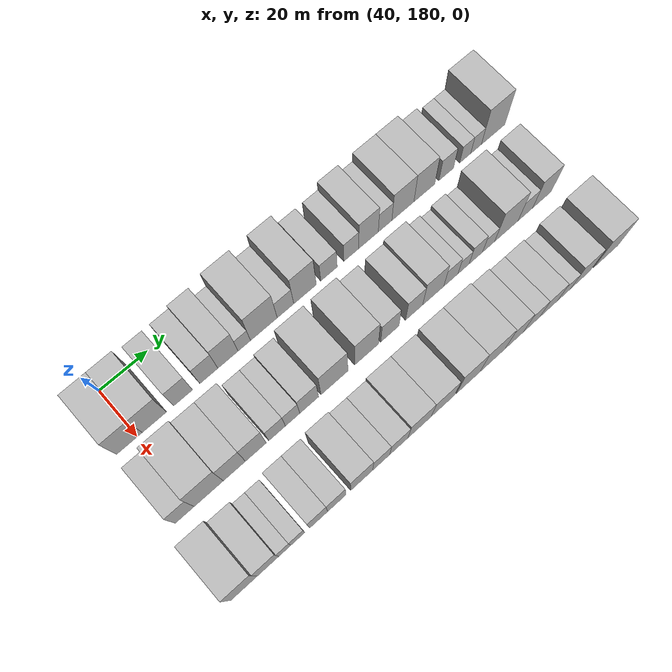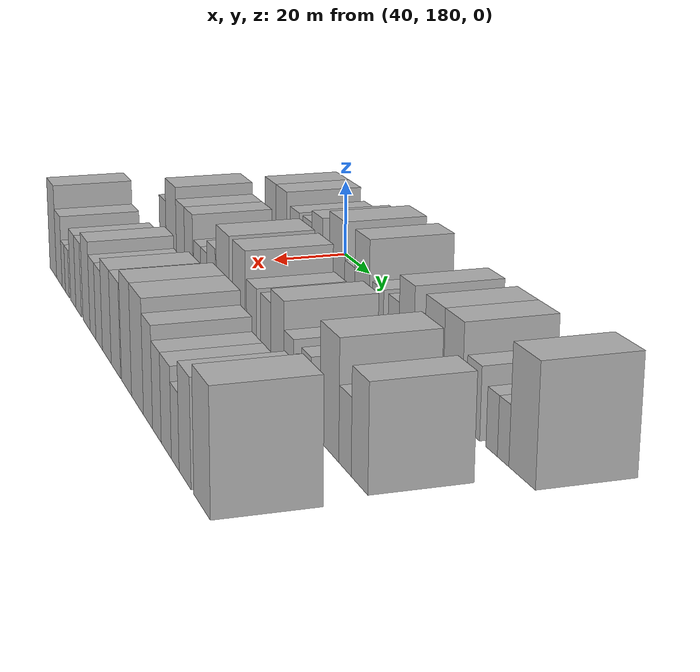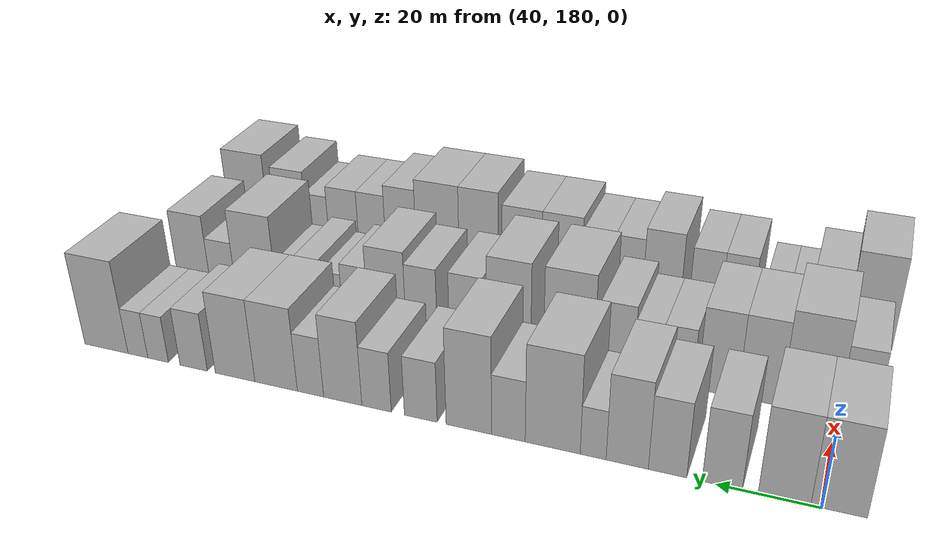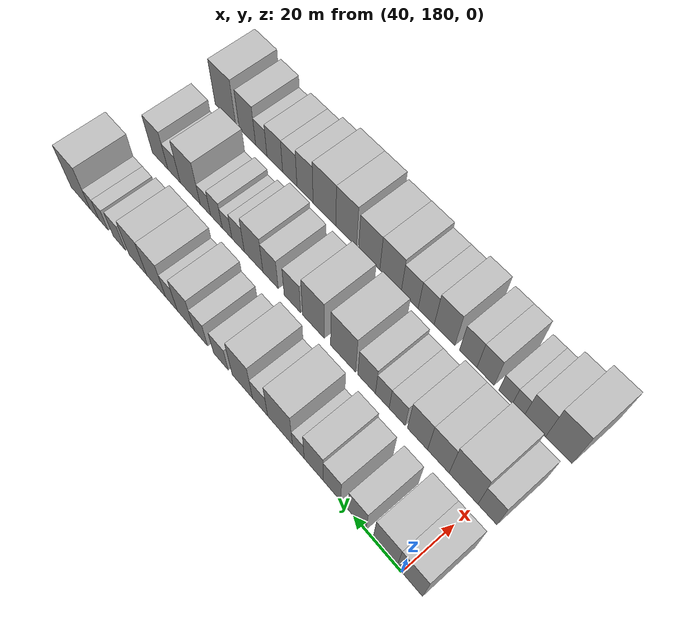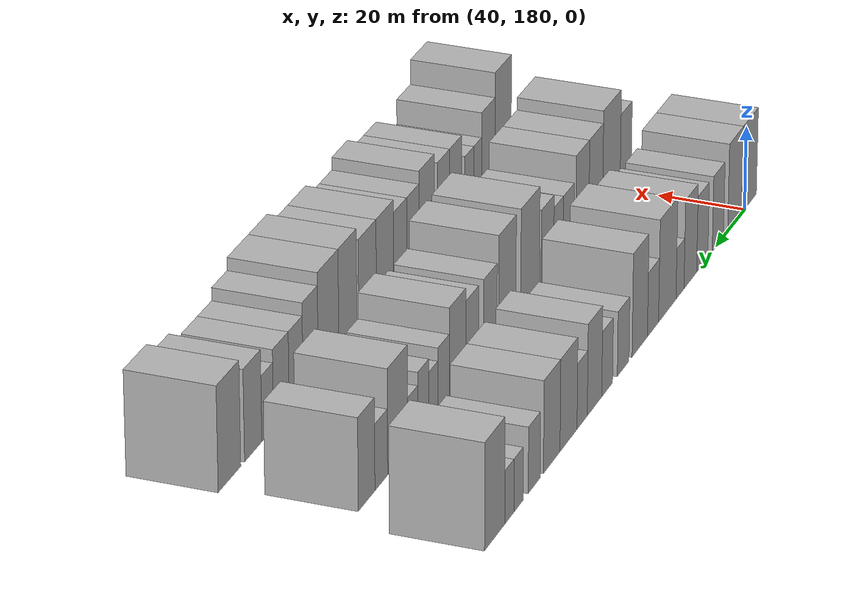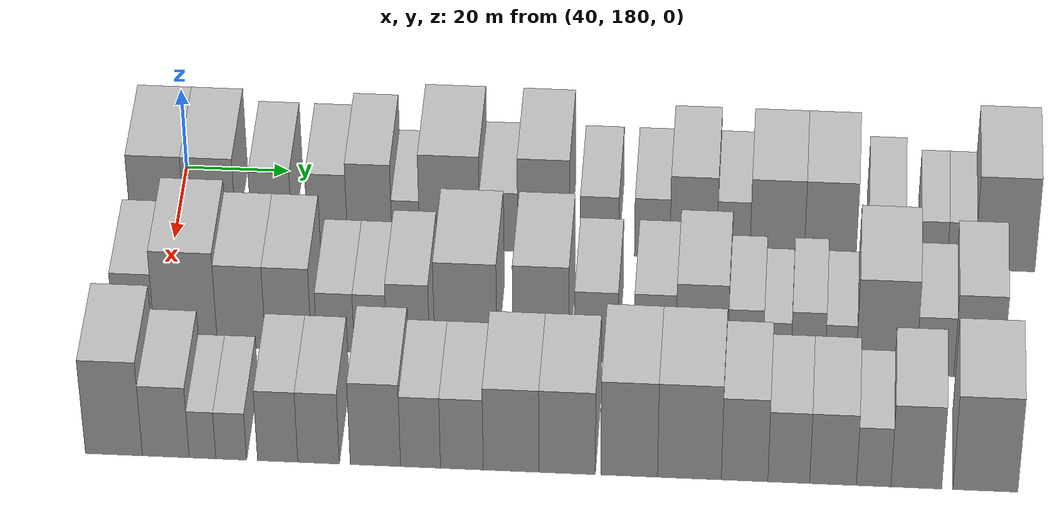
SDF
<sdf version="1.6">
 <world name="default">
  <model name="building_59">
   <static>1</static>
   <pose>50.0000 176.8677 0 0.000000 0.000000 0.000000</pose>
   <link name="link">
    <pose>0 0 10.50 0 0 0</pose>
    <collision name="collision"><geometry><box><size>20.0000 10.3661 21.0000</size></box></geometry></collision>
    <visual name="visual">
     <cast_shadows>0</cast_shadows>
     <geometry><box><size>20.0000 10.3661 21.0000</size></box></geometry>
     <material>
      <script>
       <uri>model://HANNAS_wall/materials/scripts</uri>
       <uri>model://HANNAS_wall/materials/textures</uri>
       <name>vrc/HANNAS_wall</name>
      </script>
     </material>
    </visual>
   </link>
  </model>
  <model name="building_60">
   <static>1</static>
   <pose>50.0000 186.9802 0 0.000000 0.000000 0.000000</pose>
   <link name="link">
    <pose>0 0 10.50 0 0 0</pose>
    <collision name="collision"><geometry><box><size>20.0000 9.8590 21.0000</size></box></geometry></collision>
    <visual name="visual">
     <cast_shadows>0</cast_shadows>
     <geometry><box><size>20.0000 9.8590 21.0000</size></box></geometry>
     <material>
      <script>
       <uri>model://HANNAS_wall/materials/scripts</uri>
       <uri>model://HANNAS_wall/materials/textures</uri>
       <name>vrc/HANNAS_wall</name>
      </script>
     </material>
    </visual>
   </link>
  </model>
  <model name="building_61">
   <static>1</static>
   <pose>50.0000 198.7868 0 0.000000 0.000000 0.000000</pose>
   <link name="link">
    <pose>0 0 9.00 0 0 0</pose>
    <collision name="collision"><geometry><box><size>20.0000 7.7542 18.0000</size></box></geometry></collision>
    <visual name="visual">
     <cast_shadows>0</cast_shadows>
     <geometry><box><size>20.0000 7.7542 18.0000</size></box></geometry>
     <material>
      <script>
       <uri>model://HANNAS_wall/materials/scripts</uri>
       <uri>model://HANNAS_wall/materials/textures</uri>
       <name>vrc/HANNAS_wall</name>
      </script>
     </material>
    </visual>
   </link>
  </model>
  <model name="building_62">
   <static>1</static>
   <pose>50.0000 209.4647 0 0.000000 0.000000 0.000000</pose>
   <link name="link">
    <pose>0 0 9.00 0 0 0</pose>
    <collision name="collision"><geometry><box><size>20.0000 7.6016 18.0000</size></box></geometry></collision>
    <visual name="visual">
     <cast_shadows>0</cast_shadows>
     <geometry><box><size>20.0000 7.6016 18.0000</size></box></geometry>
     <material>
      <script>
       <uri>model://HANNAS_wall/materials/scripts</uri>
       <uri>model://HANNAS_wall/materials/textures</uri>
       <name>vrc/HANNAS_wall</name>
      </script>
     </material>
    </visual>
   </link>
  </model>
  <model name="building_63">
   <static>1</static>
   <pose>50.0000 217.5385 0 0.000000 0.000000 0.000000</pose>
   <link name="link">
    <pose>0 0 10.50 0 0 0</pose>
    <collision name="collision"><geometry><box><size>20.0000 8.5460 21.0000</size></box></geometry></collision>
    <visual name="visual">
     <cast_shadows>0</cast_shadows>
     <geometry><box><size>20.0000 8.5460 21.0000</size></box></geometry>
     <material>
      <script>
       <uri>model://HANNAS_wall/materials/scripts</uri>
       <uri>model://HANNAS_wall/materials/textures</uri>
       <name>vrc/HANNAS_wall</name>
      </script>
     </material>
    </visual>
   </link>
  </model>
  <model name="building_64">
   <static>1</static>
   <pose>50.0000 224.4745 0 0.000000 0.000000 0.000000</pose>
   <link name="link">
    <pose>0 0 6.00 0 0 0</pose>
    <collision name="collision"><geometry><box><size>20.0000 5.3259 12.0000</size></box></geometry></collision>
    <visual name="visual">
     <cast_shadows>0</cast_shadows>
     <geometry><box><size>20.0000 5.3259 12.0000</size></box></geometry>
     <material>
      <script>
       <uri>model://HANNAS_wall/materials/scripts</uri>
       <uri>model://HANNAS_wall/materials/textures</uri>
       <name>vrc/HANNAS_wall</name>
      </script>
     </material>
    </visual>
   </link>
  </model>
  <model name="building_65">
   <static>1</static>
   <pose>50.0000 232.9059 0 0.000000 0.000000 0.000000</pose>
   <link name="link">
    <pose>0 0 12.00 0 0 0</pose>
    <collision name="collision"><geometry><box><size>20.0000 11.5370 24.0000</size></box></geometry></collision>
    <visual name="visual">
     <cast_shadows>0</cast_shadows>
     <geometry><box><size>20.0000 11.5370 24.0000</size></box></geometry>
     <material>
      <script>
       <uri>model://HANNAS_wall/materials/scripts</uri>
       <uri>model://HANNAS_wall/materials/textures</uri>
       <name>vrc/HANNAS_wall</name>
      </script>
     </material>
    </visual>
   </link>
  </model>
  <model name="building_66">
   <static>1</static>
   <pose>50.0000 242.2932 0 0.000000 0.000000 0.000000</pose>
   <link name="link">
    <pose>0 0 7.50 0 0 0</pose>
    <collision name="collision"><geometry><box><size>20.0000 7.2375 15.0000</size></box></geometry></collision>
    <visual name="visual">
     <cast_shadows>0</cast_shadows>
     <geometry><box><size>20.0000 7.2375 15.0000</size></box></geometry>
     <material>
      <script>
       <uri>model://HANNAS_wall/materials/scripts</uri>
       <uri>model://HANNAS_wall/materials/textures</uri>
       <name>vrc/HANNAS_wall</name>
      </script>
     </material>
    </visual>
   </link>
  </model>
  <model name="building_67">
   <static>1</static>
   <pose>50.0000 250.8812 0 0.000000 0.000000 0.000000</pose>
   <link name="link">
    <pose>0 0 12.00 0 0 0</pose>
    <collision name="collision"><geometry><box><size>20.0000 9.9385 24.0000</size></box></geometry></collision>
    <visual name="visual">
     <cast_shadows>0</cast_shadows>
     <geometry><box><size>20.0000 9.9385 24.0000</size></box></geometry>
     <material>
      <script>
       <uri>model://HANNAS_wall/materials/scripts</uri>
       <uri>model://HANNAS_wall/materials/textures</uri>
       <name>vrc/HANNAS_wall</name>
      </script>
     </material>
    </visual>
   </link>
  </model>
  <model name="building_68">
   <static>1</static>
   <pose>50.0000 261.5313 0 0.000000 0.000000 0.000000</pose>
   <link name="link">
    <pose>0 0 7.50 0 0 0</pose>
    <collision name="collision"><geometry><box><size>20.0000 7.3618 15.0000</size></box></geometry></collision>
    <visual name="visual">
     <cast_shadows>0</cast_shadows>
     <geometry><box><size>20.0000 7.3618 15.0000</size></box></geometry>
     <material>
      <script>
       <uri>model://HANNAS_wall/materials/scripts</uri>
       <uri>model://HANNAS_wall/materials/textures</uri>
       <name>vrc/HANNAS_wall</name>
      </script>
     </material>
    </visual>
   </link>
  </model>
  <model name="building_69">
   <static>1</static>
   <pose>50.0000 271.6020 0 0.000000 0.000000 0.000000</pose>
   <link name="link">
    <pose>0 0 7.50 0 0 0</pose>
    <collision name="collision"><geometry><box><size>20.0000 6.7797 15.0000</size></box></geometry></collision>
    <visual name="visual">
     <cast_shadows>0</cast_shadows>
     <geometry><box><size>20.0000 6.7797 15.0000</size></box></geometry>
     <material>
      <script>
       <uri>model://HANNAS_wall/materials/scripts</uri>
       <uri>model://HANNAS_wall/materials/textures</uri>
       <name>vrc/HANNAS_wall</name>
      </script>
     </material>
    </visual>
   </link>
  </model>
  <model name="building_70">
   <static>1</static>
   <pose>50.0000 279.4677 0 0.000000 0.000000 0.000000</pose>
   <link name="link">
    <pose>0 0 10.50 0 0 0</pose>
    <collision name="collision"><geometry><box><size>20.0000 8.9516 21.0000</size></box></geometry></collision>
    <visual name="visual">
     <cast_shadows>0</cast_shadows>
     <geometry><box><size>20.0000 8.9516 21.0000</size></box></geometry>
     <material>
      <script>
       <uri>model://HANNAS_wall/materials/scripts</uri>
       <uri>model://HANNAS_wall/materials/textures</uri>
       <name>vrc/HANNAS_wall</name>
      </script>
     </material>
    </visual>
   </link>
  </model>
  <model name="building_71">
   <static>1</static>
   <pose>50.0000 287.0806 0 0.000000 0.000000 0.000000</pose>
   <link name="link">
    <pose>0 0 7.50 0 0 0</pose>
    <collision name="collision"><geometry><box><size>20.0000 6.2743 15.0000</size></box></geometry></collision>
    <visual name="visual">
     <cast_shadows>0</cast_shadows>
     <geometry><box><size>20.0000 6.2743 15.0000</size></box></geometry>
     <material>
      <script>
       <uri>model://HANNAS_wall/materials/scripts</uri>
       <uri>model://HANNAS_wall/materials/textures</uri>
       <name>vrc/HANNAS_wall</name>
      </script>
     </material>
    </visual>
   </link>
  </model>
  <model name="building_72">
   <static>1</static>
   <pose>50.0000 295.3811 0 0.000000 0.000000 0.000000</pose>
   <link name="link">
    <pose>0 0 10.50 0 0 0</pose>
    <collision name="collision"><geometry><box><size>20.0000 10.3266 21.0000</size></box></geometry></collision>
    <visual name="visual">
     <cast_shadows>0</cast_shadows>
     <geometry><box><size>20.0000 10.3266 21.0000</size></box></geometry>
     <material>
      <script>
       <uri>model://HANNAS_wall/materials/scripts</uri>
       <uri>model://HANNAS_wall/materials/textures</uri>
       <name>vrc/HANNAS_wall</name>
      </script>
     </material>
    </visual>
   </link>
  </model>
  <model name="building_73">
   <static>1</static>
   <pose>50.0000 305.4804 0 0.000000 0.000000 0.000000</pose>
   <link name="link">
    <pose>0 0 10.50 0 0 0</pose>
    <collision name="collision"><geometry><box><size>20.0000 9.8720 21.0000</size></box></geometry></collision>
    <visual name="visual">
     <cast_shadows>0</cast_shadows>
     <geometry><box><size>20.0000 9.8720 21.0000</size></box></geometry>
     <material>
      <script>
       <uri>model://HANNAS_wall/materials/scripts</uri>
       <uri>model://HANNAS_wall/materials/textures</uri>
       <name>vrc/HANNAS_wall</name>
      </script>
     </material>
    </visual>
   </link>
  </model>
  <model name="building_74">
   <static>1</static>
   <pose>50.0000 315.9014 0 0.000000 0.000000 0.000000</pose>
   <link name="link">
    <pose>0 0 7.50 0 0 0</pose>
    <collision name="collision"><geometry><box><size>20.0000 6.9698 15.0000</size></box></geometry></collision>
    <visual name="visual">
     <cast_shadows>0</cast_shadows>
     <geometry><box><size>20.0000 6.9698 15.0000</size></box></geometry>
     <material>
      <script>
       <uri>model://HANNAS_wall/materials/scripts</uri>
       <uri>model://HANNAS_wall/materials/textures</uri>
       <name>vrc/HANNAS_wall</name>
      </script>
     </material>
    </visual>
   </link>
  </model>
  <model name="building_75">
   <static>1</static>
   <pose>50.0000 325.0619 0 0.000000 0.000000 0.000000</pose>
   <link name="link">
    <pose>0 0 6.00 0 0 0</pose>
    <collision name="collision"><geometry><box><size>20.0000 5.3513 12.0000</size></box></geometry></collision>
    <visual name="visual">
     <cast_shadows>0</cast_shadows>
     <geometry><box><size>20.0000 5.3513 12.0000</size></box></geometry>
     <material>
      <script>
       <uri>model://HANNAS_wall/materials/scripts</uri>
       <uri>model://HANNAS_wall/materials/textures</uri>
       <name>vrc/HANNAS_wall</name>
      </script>
     </material>
    </visual>
   </link>
  </model>
  <model name="building_76">
   <static>1</static>
   <pose>50.0000 330.3383 0 0.000000 0.000000 0.000000</pose>
   <link name="link">
    <pose>0 0 6.00 0 0 0</pose>
    <collision name="collision"><geometry><box><size>20.0000 5.2015 12.0000</size></box></geometry></collision>
    <visual name="visual">
     <cast_shadows>0</cast_shadows>
     <geometry><box><size>20.0000 5.2015 12.0000</size></box></geometry>
     <material>
      <script>
       <uri>model://HANNAS_wall/materials/scripts</uri>
       <uri>model://HANNAS_wall/materials/textures</uri>
       <name>vrc/HANNAS_wall</name>
      </script>
     </material>
    </visual>
   </link>
  </model>
  <model name="building_77">
   <static>1</static>
   <pose>50.0000 338.7043 0 0.000000 0.000000 0.000000</pose>
   <link name="link">
    <pose>0 0 12.00 0 0 0</pose>
    <collision name="collision"><geometry><box><size>20.0000 11.5305 24.0000</size></box></geometry></collision>
    <visual name="visual">
     <cast_shadows>0</cast_shadows>
     <geometry><box><size>20.0000 11.5305 24.0000</size></box></geometry>
     <material>
      <script>
       <uri>model://HANNAS_wall/materials/scripts</uri>
       <uri>model://HANNAS_wall/materials/textures</uri>
       <name>vrc/HANNAS_wall</name>
      </script>
     </material>
    </visual>
   </link>
  </model>
  <model name="building_137">
   <static>1</static>
   <pose>79.0000 175.9115 0 0.000000 0.000000 0.000000</pose>
   <link name="link">
    <pose>0 0 9.00 0 0 0</pose>
    <collision name="collision"><geometry><box><size>20.0000 7.5500 18.0000</size></box></geometry></collision>
    <visual name="visual">
     <cast_shadows>0</cast_shadows>
     <geometry><box><size>20.0000 7.5500 18.0000</size></box></geometry>
     <material>
      <script>
       <uri>model://HANNAS_wall/materials/scripts</uri>
       <uri>model://HANNAS_wall/materials/textures</uri>
       <name>vrc/HANNAS_wall</name>
      </script>
     </material>
    </visual>
   </link>
  </model>
  <model name="building_138">
   <static>1</static>
   <pose>79.0000 185.5777 0 0.000000 0.000000 0.000000</pose>
   <link name="link">
    <pose>0 0 12.00 0 0 0</pose>
    <collision name="collision"><geometry><box><size>20.0000 11.7824 24.0000</size></box></geometry></collision>
    <visual name="visual">
     <cast_shadows>0</cast_shadows>
     <geometry><box><size>20.0000 11.7824 24.0000</size></box></geometry>
     <material>
      <script>
       <uri>model://HANNAS_wall/materials/scripts</uri>
       <uri>model://HANNAS_wall/materials/textures</uri>
       <name>vrc/HANNAS_wall</name>
      </script>
     </material>
    </visual>
   </link>
  </model>
  <model name="building_139">
   <static>1</static>
   <pose>79.0000 195.9946 0 0.000000 0.000000 0.000000</pose>
   <link name="link">
    <pose>0 0 10.50 0 0 0</pose>
    <collision name="collision"><geometry><box><size>20.0000 9.0515 21.0000</size></box></geometry></collision>
    <visual name="visual">
     <cast_shadows>0</cast_shadows>
     <geometry><box><size>20.0000 9.0515 21.0000</size></box></geometry>
     <material>
      <script>
       <uri>model://HANNAS_wall/materials/scripts</uri>
       <uri>model://HANNAS_wall/materials/textures</uri>
       <name>vrc/HANNAS_wall</name>
      </script>
     </material>
    </visual>
   </link>
  </model>
  <model name="building_140">
   <static>1</static>
   <pose>79.0000 204.8444 0 0.000000 0.000000 0.000000</pose>
   <link name="link">
    <pose>0 0 10.50 0 0 0</pose>
    <collision name="collision"><geometry><box><size>20.0000 8.6481 21.0000</size></box></geometry></collision>
    <visual name="visual">
     <cast_shadows>0</cast_shadows>
     <geometry><box><size>20.0000 8.6481 21.0000</size></box></geometry>
     <material>
      <script>
       <uri>model://HANNAS_wall/materials/scripts</uri>
       <uri>model://HANNAS_wall/materials/textures</uri>
       <name>vrc/HANNAS_wall</name>
      </script>
     </material>
    </visual>
   </link>
  </model>
  <model name="building_141">
   <static>1</static>
   <pose>79.0000 213.6674 0 0.000000 0.000000 0.000000</pose>
   <link name="link">
    <pose>0 0 7.50 0 0 0</pose>
    <collision name="collision"><geometry><box><size>20.0000 6.9978 15.0000</size></box></geometry></collision>
    <visual name="visual">
     <cast_shadows>0</cast_shadows>
     <geometry><box><size>20.0000 6.9978 15.0000</size></box></geometry>
     <material>
      <script>
       <uri>model://HANNAS_wall/materials/scripts</uri>
       <uri>model://HANNAS_wall/materials/textures</uri>
       <name>vrc/HANNAS_wall</name>
      </script>
     </material>
    </visual>
   </link>
  </model>
  <model name="building_142">
   <static>1</static>
   <pose>79.0000 220.2241 0 0.000000 0.000000 0.000000</pose>
   <link name="link">
    <pose>0 0 7.50 0 0 0</pose>
    <collision name="collision"><geometry><box><size>20.0000 6.1157 15.0000</size></box></geometry></collision>
    <visual name="visual">
     <cast_shadows>0</cast_shadows>
     <geometry><box><size>20.0000 6.1157 15.0000</size></box></geometry>
     <material>
      <script>
       <uri>model://HANNAS_wall/materials/scripts</uri>
       <uri>model://HANNAS_wall/materials/textures</uri>
       <name>vrc/HANNAS_wall</name>
      </script>
     </material>
    </visual>
   </link>
  </model>
  <model name="building_143">
   <static>1</static>
   <pose>79.0000 227.2774 0 0.000000 0.000000 0.000000</pose>
   <link name="link">
    <pose>0 0 9.00 0 0 0</pose>
    <collision name="collision"><geometry><box><size>20.0000 7.9909 18.0000</size></box></geometry></collision>
    <visual name="visual">
     <cast_shadows>0</cast_shadows>
     <geometry><box><size>20.0000 7.9909 18.0000</size></box></geometry>
     <material>
      <script>
       <uri>model://HANNAS_wall/materials/scripts</uri>
       <uri>model://HANNAS_wall/materials/textures</uri>
       <name>vrc/HANNAS_wall</name>
      </script>
     </material>
    </visual>
   </link>
  </model>
  <model name="building_144">
   <static>1</static>
   <pose>79.0000 238.1107 0 0.000000 0.000000 0.000000</pose>
   <link name="link">
    <pose>0 0 12.00 0 0 0</pose>
    <collision name="collision"><geometry><box><size>20.0000 11.6755 24.0000</size></box></geometry></collision>
    <visual name="visual">
     <cast_shadows>0</cast_shadows>
     <geometry><box><size>20.0000 11.6755 24.0000</size></box></geometry>
     <material>
      <script>
       <uri>model://HANNAS_wall/materials/scripts</uri>
       <uri>model://HANNAS_wall/materials/textures</uri>
       <name>vrc/HANNAS_wall</name>
      </script>
     </material>
    </visual>
   </link>
  </model>
  <model name="building_145">
   <static>1</static>
   <pose>79.0000 252.1786 0 0.000000 0.000000 0.000000</pose>
   <link name="link">
    <pose>0 0 12.00 0 0 0</pose>
    <collision name="collision"><geometry><box><size>20.0000 10.4603 24.0000</size></box></geometry></collision>
    <visual name="visual">
     <cast_shadows>0</cast_shadows>
     <geometry><box><size>20.0000 10.4603 24.0000</size></box></geometry>
     <material>
      <script>
       <uri>model://HANNAS_wall/materials/scripts</uri>
       <uri>model://HANNAS_wall/materials/textures</uri>
       <name>vrc/HANNAS_wall</name>
      </script>
     </material>
    </visual>
   </link>
  </model>
  <model name="building_146">
   <static>1</static>
   <pose>79.0000 262.4623 0 0.000000 0.000000 0.000000</pose>
   <link name="link">
    <pose>0 0 9.00 0 0 0</pose>
    <collision name="collision"><geometry><box><size>20.0000 8.1072 18.0000</size></box></geometry></collision>
    <visual name="visual">
     <cast_shadows>0</cast_shadows>
     <geometry><box><size>20.0000 8.1072 18.0000</size></box></geometry>
     <material>
      <script>
       <uri>model://HANNAS_wall/materials/scripts</uri>
       <uri>model://HANNAS_wall/materials/textures</uri>
       <name>vrc/HANNAS_wall</name>
      </script>
     </material>
    </visual>
   </link>
  </model>
  <model name="building_147">
   <static>1</static>
   <pose>79.0000 273.4021 0 0.000000 0.000000 0.000000</pose>
   <link name="link">
    <pose>0 0 9.00 0 0 0</pose>
    <collision name="collision"><geometry><box><size>20.0000 7.7724 18.0000</size></box></geometry></collision>
    <visual name="visual">
     <cast_shadows>0</cast_shadows>
     <geometry><box><size>20.0000 7.7724 18.0000</size></box></geometry>
     <material>
      <script>
       <uri>model://HANNAS_wall/materials/scripts</uri>
       <uri>model://HANNAS_wall/materials/textures</uri>
       <name>vrc/HANNAS_wall</name>
      </script>
     </material>
    </visual>
   </link>
  </model>
  <model name="building_148">
   <static>1</static>
   <pose>79.0000 282.1046 0 0.000000 0.000000 0.000000</pose>
   <link name="link">
    <pose>0 0 10.50 0 0 0</pose>
    <collision name="collision"><geometry><box><size>20.0000 9.6325 21.0000</size></box></geometry></collision>
    <visual name="visual">
     <cast_shadows>0</cast_shadows>
     <geometry><box><size>20.0000 9.6325 21.0000</size></box></geometry>
     <material>
      <script>
       <uri>model://HANNAS_wall/materials/scripts</uri>
       <uri>model://HANNAS_wall/materials/textures</uri>
       <name>vrc/HANNAS_wall</name>
      </script>
     </material>
    </visual>
   </link>
  </model>
  <model name="building_149">
   <static>1</static>
   <pose>79.0000 290.2154 0 0.000000 0.000000 0.000000</pose>
   <link name="link">
    <pose>0 0 7.50 0 0 0</pose>
    <collision name="collision"><geometry><box><size>20.0000 6.5892 15.0000</size></box></geometry></collision>
    <visual name="visual">
     <cast_shadows>0</cast_shadows>
     <geometry><box><size>20.0000 6.5892 15.0000</size></box></geometry>
     <material>
      <script>
       <uri>model://HANNAS_wall/materials/scripts</uri>
       <uri>model://HANNAS_wall/materials/textures</uri>
       <name>vrc/HANNAS_wall</name>
      </script>
     </material>
    </visual>
   </link>
  </model>
  <model name="building_150">
   <static>1</static>
   <pose>79.0000 296.0943 0 0.000000 0.000000 0.000000</pose>
   <link name="link">
    <pose>0 0 6.00 0 0 0</pose>
    <collision name="collision"><geometry><box><size>20.0000 5.1684 12.0000</size></box></geometry></collision>
    <visual name="visual">
     <cast_shadows>0</cast_shadows>
     <geometry><box><size>20.0000 5.1684 12.0000</size></box></geometry>
     <material>
      <script>
       <uri>model://HANNAS_wall/materials/scripts</uri>
       <uri>model://HANNAS_wall/materials/textures</uri>
       <name>vrc/HANNAS_wall</name>
      </script>
     </material>
    </visual>
   </link>
  </model>
  <model name="building_151">
   <static>1</static>
   <pose>79.0000 301.8530 0 0.000000 0.000000 0.000000</pose>
   <link name="link">
    <pose>0 0 7.50 0 0 0</pose>
    <collision name="collision"><geometry><box><size>20.0000 6.3490 15.0000</size></box></geometry></collision>
    <visual name="visual">
     <cast_shadows>0</cast_shadows>
     <geometry><box><size>20.0000 6.3490 15.0000</size></box></geometry>
     <material>
      <script>
       <uri>model://HANNAS_wall/materials/scripts</uri>
       <uri>model://HANNAS_wall/materials/textures</uri>
       <name>vrc/HANNAS_wall</name>
      </script>
     </material>
    </visual>
   </link>
  </model>
  <model name="building_152">
   <static>1</static>
   <pose>79.0000 307.9113 0 0.000000 0.000000 0.000000</pose>
   <link name="link">
    <pose>0 0 6.00 0 0 0</pose>
    <collision name="collision"><geometry><box><size>20.0000 5.7678 12.0000</size></box></geometry></collision>
    <visual name="visual">
     <cast_shadows>0</cast_shadows>
     <geometry><box><size>20.0000 5.7678 12.0000</size></box></geometry>
     <material>
      <script>
       <uri>model://HANNAS_wall/materials/scripts</uri>
       <uri>model://HANNAS_wall/materials/textures</uri>
       <name>vrc/HANNAS_wall</name>
      </script>
     </material>
    </visual>
   </link>
  </model>
  <model name="building_153">
   <static>1</static>
   <pose>79.0000 316.3956 0 0.000000 0.000000 0.000000</pose>
   <link name="link">
    <pose>0 0 12.00 0 0 0</pose>
    <collision name="collision"><geometry><box><size>20.0000 11.2008 24.0000</size></box></geometry></collision>
    <visual name="visual">
     <cast_shadows>0</cast_shadows>
     <geometry><box><size>20.0000 11.2008 24.0000</size></box></geometry>
     <material>
      <script>
       <uri>model://HANNAS_wall/materials/scripts</uri>
       <uri>model://HANNAS_wall/materials/textures</uri>
       <name>vrc/HANNAS_wall</name>
      </script>
     </material>
    </visual>
   </link>
  </model>
  <model name="building_154">
   <static>1</static>
   <pose>79.0000 325.5256 0 0.000000 0.000000 0.000000</pose>
   <link name="link">
    <pose>0 0 7.50 0 0 0</pose>
    <collision name="collision"><geometry><box><size>20.0000 7.0592 15.0000</size></box></geometry></collision>
    <visual name="visual">
     <cast_shadows>0</cast_shadows>
     <geometry><box><size>20.0000 7.0592 15.0000</size></box></geometry>
     <material>
      <script>
       <uri>model://HANNAS_wall/materials/scripts</uri>
       <uri>model://HANNAS_wall/materials/textures</uri>
       <name>vrc/HANNAS_wall</name>
      </script>
     </material>
    </visual>
   </link>
  </model>
  <model name="building_155">
   <static>1</static>
   <pose>79.0000 333.6061 0 0.000000 0.000000 0.000000</pose>
   <link name="link">
    <pose>0 0 10.50 0 0 0</pose>
    <collision name="collision"><geometry><box><size>20.0000 9.1018 21.0000</size></box></geometry></collision>
    <visual name="visual">
     <cast_shadows>0</cast_shadows>
     <geometry><box><size>20.0000 9.1018 21.0000</size></box></geometry>
     <material>
      <script>
       <uri>model://HANNAS_wall/materials/scripts</uri>
       <uri>model://HANNAS_wall/materials/textures</uri>
       <name>vrc/HANNAS_wall</name>
      </script>
     </material>
    </visual>
   </link>
  </model>
  <model name="building_211">
   <static>1</static>
   <pose>108.0000 175.6363 0 0.000000 0.000000 0.000000</pose>
   <link name="link">
    <pose>0 0 12.00 0 0 0</pose>
    <collision name="collision"><geometry><box><size>20.0000 10.4892 24.0000</size></box></geometry></collision>
    <visual name="visual">
     <cast_shadows>0</cast_shadows>
     <geometry><box><size>20.0000 10.4892 24.0000</size></box></geometry>
     <material>
      <script>
       <uri>model://HANNAS_wall/materials/scripts</uri>
       <uri>model://HANNAS_wall/materials/textures</uri>
       <name>vrc/HANNAS_wall</name>
      </script>
     </material>
    </visual>
   </link>
  </model>
  <model name="building_212">
   <static>1</static>
   <pose>108.0000 185.1774 0 0.000000 0.000000 0.000000</pose>
   <link name="link">
    <pose>0 0 9.00 0 0 0</pose>
    <collision name="collision"><geometry><box><size>20.0000 8.5930 18.0000</size></box></geometry></collision>
    <visual name="visual">
     <cast_shadows>0</cast_shadows>
     <geometry><box><size>20.0000 8.5930 18.0000</size></box></geometry>
     <material>
      <script>
       <uri>model://HANNAS_wall/materials/scripts</uri>
       <uri>model://HANNAS_wall/materials/textures</uri>
       <name>vrc/HANNAS_wall</name>
      </script>
     </material>
    </visual>
   </link>
  </model>
  <model name="building_213">
   <static>1</static>
   <pose>108.0000 191.9170 0 0.000000 0.000000 0.000000</pose>
   <link name="link">
    <pose>0 0 6.00 0 0 0</pose>
    <collision name="collision"><geometry><box><size>20.0000 4.8860 12.0000</size></box></geometry></collision>
    <visual name="visual">
     <cast_shadows>0</cast_shadows>
     <geometry><box><size>20.0000 4.8860 12.0000</size></box></geometry>
     <material>
      <script>
       <uri>model://HANNAS_wall/materials/scripts</uri>
       <uri>model://HANNAS_wall/materials/textures</uri>
       <name>vrc/HANNAS_wall</name>
      </script>
     </material>
    </visual>
   </link>
  </model>
  <model name="building_214">
   <static>1</static>
   <pose>108.0000 197.1956 0 0.000000 0.000000 0.000000</pose>
   <link name="link">
    <pose>0 0 6.00 0 0 0</pose>
    <collision name="collision"><geometry><box><size>20.0000 5.6714 12.0000</size></box></geometry></collision>
    <visual name="visual">
     <cast_shadows>0</cast_shadows>
     <geometry><box><size>20.0000 5.6714 12.0000</size></box></geometry>
     <material>
      <script>
       <uri>model://HANNAS_wall/materials/scripts</uri>
       <uri>model://HANNAS_wall/materials/textures</uri>
       <name>vrc/HANNAS_wall</name>
      </script>
     </material>
    </visual>
   </link>
  </model>
  <model name="building_215">
   <static>1</static>
   <pose>108.0000 205.7304 0 0.000000 0.000000 0.000000</pose>
   <link name="link">
    <pose>0 0 9.00 0 0 0</pose>
    <collision name="collision"><geometry><box><size>20.0000 7.3981 18.0000</size></box></geometry></collision>
    <visual name="visual">
     <cast_shadows>0</cast_shadows>
     <geometry><box><size>20.0000 7.3981 18.0000</size></box></geometry>
     <material>
      <script>
       <uri>model://HANNAS_wall/materials/scripts</uri>
       <uri>model://HANNAS_wall/materials/textures</uri>
       <name>vrc/HANNAS_wall</name>
      </script>
     </material>
    </visual>
   </link>
  </model>
  <model name="building_216">
   <static>1</static>
   <pose>108.0000 213.2340 0 0.000000 0.000000 0.000000</pose>
   <link name="link">
    <pose>0 0 9.00 0 0 0</pose>
    <collision name="collision"><geometry><box><size>20.0000 7.6091 18.0000</size></box></geometry></collision>
    <visual name="visual">
     <cast_shadows>0</cast_shadows>
     <geometry><box><size>20.0000 7.6091 18.0000</size></box></geometry>
     <material>
      <script>
       <uri>model://HANNAS_wall/materials/scripts</uri>
       <uri>model://HANNAS_wall/materials/textures</uri>
       <name>vrc/HANNAS_wall</name>
      </script>
     </material>
    </visual>
   </link>
  </model>
  <model name="building_217">
   <static>1</static>
   <pose>108.0000 223.6437 0 0.000000 0.000000 0.000000</pose>
   <link name="link">
    <pose>0 0 10.50 0 0 0</pose>
    <collision name="collision"><geometry><box><size>20.0000 9.2102 21.0000</size></box></geometry></collision>
    <visual name="visual">
     <cast_shadows>0</cast_shadows>
     <geometry><box><size>20.0000 9.2102 21.0000</size></box></geometry>
     <material>
      <script>
       <uri>model://HANNAS_wall/materials/scripts</uri>
       <uri>model://HANNAS_wall/materials/textures</uri>
       <name>vrc/HANNAS_wall</name>
      </script>
     </material>
    </visual>
   </link>
  </model>
  <model name="building_218">
   <static>1</static>
   <pose>108.0000 231.9009 0 0.000000 0.000000 0.000000</pose>
   <link name="link">
    <pose>0 0 9.00 0 0 0</pose>
    <collision name="collision"><geometry><box><size>20.0000 7.3043 18.0000</size></box></geometry></collision>
    <visual name="visual">
     <cast_shadows>0</cast_shadows>
     <geometry><box><size>20.0000 7.3043 18.0000</size></box></geometry>
     <material>
      <script>
       <uri>model://HANNAS_wall/materials/scripts</uri>
       <uri>model://HANNAS_wall/materials/textures</uri>
       <name>vrc/HANNAS_wall</name>
      </script>
     </material>
    </visual>
   </link>
  </model>
  <model name="building_219">
   <static>1</static>
   <pose>108.0000 239.4775 0 0.000000 0.000000 0.000000</pose>
   <link name="link">
    <pose>0 0 9.00 0 0 0</pose>
    <collision name="collision"><geometry><box><size>20.0000 7.8489 18.0000</size></box></geometry></collision>
    <visual name="visual">
     <cast_shadows>0</cast_shadows>
     <geometry><box><size>20.0000 7.8489 18.0000</size></box></geometry>
     <material>
      <script>
       <uri>model://HANNAS_wall/materials/scripts</uri>
       <uri>model://HANNAS_wall/materials/textures</uri>
       <name>vrc/HANNAS_wall</name>
      </script>
     </material>
    </visual>
   </link>
  </model>
  <model name="building_220">
   <static>1</static>
   <pose>108.0000 248.4936 0 0.000000 0.000000 0.000000</pose>
   <link name="link">
    <pose>0 0 10.50 0 0 0</pose>
    <collision name="collision"><geometry><box><size>20.0000 10.1832 21.0000</size></box></geometry></collision>
    <visual name="visual">
     <cast_shadows>0</cast_shadows>
     <geometry><box><size>20.0000 10.1832 21.0000</size></box></geometry>
     <material>
      <script>
       <uri>model://HANNAS_wall/materials/scripts</uri>
       <uri>model://HANNAS_wall/materials/textures</uri>
       <name>vrc/HANNAS_wall</name>
      </script>
     </material>
    </visual>
   </link>
  </model>
  <model name="building_221">
   <static>1</static>
   <pose>108.0000 258.7253 0 0.000000 0.000000 0.000000</pose>
   <link name="link">
    <pose>0 0 10.50 0 0 0</pose>
    <collision name="collision"><geometry><box><size>20.0000 10.2802 21.0000</size></box></geometry></collision>
    <visual name="visual">
     <cast_shadows>0</cast_shadows>
     <geometry><box><size>20.0000 10.2802 21.0000</size></box></geometry>
     <material>
      <script>
       <uri>model://HANNAS_wall/materials/scripts</uri>
       <uri>model://HANNAS_wall/materials/textures</uri>
       <name>vrc/HANNAS_wall</name>
      </script>
     </material>
    </visual>
   </link>
  </model>
  <model name="building_222">
   <static>1</static>
   <pose>108.0000 270.0408 0 0.000000 0.000000 0.000000</pose>
   <link name="link">
    <pose>0 0 12.00 0 0 0</pose>
    <collision name="collision"><geometry><box><size>20.0000 10.3508 24.0000</size></box></geometry></collision>
    <visual name="visual">
     <cast_shadows>0</cast_shadows>
     <geometry><box><size>20.0000 10.3508 24.0000</size></box></geometry>
     <material>
      <script>
       <uri>model://HANNAS_wall/materials/scripts</uri>
       <uri>model://HANNAS_wall/materials/textures</uri>
       <name>vrc/HANNAS_wall</name>
      </script>
     </material>
    </visual>
   </link>
  </model>
  <model name="building_223">
   <static>1</static>
   <pose>108.0000 281.0241 0 0.000000 0.000000 0.000000</pose>
   <link name="link">
    <pose>0 0 12.00 0 0 0</pose>
    <collision name="collision"><geometry><box><size>20.0000 11.6156 24.0000</size></box></geometry></collision>
    <visual name="visual">
     <cast_shadows>0</cast_shadows>
     <geometry><box><size>20.0000 11.6156 24.0000</size></box></geometry>
     <material>
      <script>
       <uri>model://HANNAS_wall/materials/scripts</uri>
       <uri>model://HANNAS_wall/materials/textures</uri>
       <name>vrc/HANNAS_wall</name>
      </script>
     </material>
    </visual>
   </link>
  </model>
  <model name="building_224">
   <static>1</static>
   <pose>108.0000 291.0590 0 0.000000 0.000000 0.000000</pose>
   <link name="link">
    <pose>0 0 10.50 0 0 0</pose>
    <collision name="collision"><geometry><box><size>20.0000 8.4542 21.0000</size></box></geometry></collision>
    <visual name="visual">
     <cast_shadows>0</cast_shadows>
     <geometry><box><size>20.0000 8.4542 21.0000</size></box></geometry>
     <material>
      <script>
       <uri>model://HANNAS_wall/materials/scripts</uri>
       <uri>model://HANNAS_wall/materials/textures</uri>
       <name>vrc/HANNAS_wall</name>
      </script>
     </material>
    </visual>
   </link>
  </model>
  <model name="building_225">
   <static>1</static>
   <pose>108.0000 299.0884 0 0.000000 0.000000 0.000000</pose>
   <link name="link">
    <pose>0 0 9.00 0 0 0</pose>
    <collision name="collision"><geometry><box><size>20.0000 7.6045 18.0000</size></box></geometry></collision>
    <visual name="visual">
     <cast_shadows>0</cast_shadows>
     <geometry><box><size>20.0000 7.6045 18.0000</size></box></geometry>
     <material>
      <script>
       <uri>model://HANNAS_wall/materials/scripts</uri>
       <uri>model://HANNAS_wall/materials/textures</uri>
       <name>vrc/HANNAS_wall</name>
      </script>
     </material>
    </visual>
   </link>
  </model>
  <model name="building_226">
   <static>1</static>
   <pose>108.0000 307.1470 0 0.000000 0.000000 0.000000</pose>
   <link name="link">
    <pose>0 0 9.00 0 0 0</pose>
    <collision name="collision"><geometry><box><size>20.0000 8.5127 18.0000</size></box></geometry></collision>
    <visual name="visual">
     <cast_shadows>0</cast_shadows>
     <geometry><box><size>20.0000 8.5127 18.0000</size></box></geometry>
     <material>
      <script>
       <uri>model://HANNAS_wall/materials/scripts</uri>
       <uri>model://HANNAS_wall/materials/textures</uri>
       <name>vrc/HANNAS_wall</name>
      </script>
     </material>
    </visual>
   </link>
  </model>
  <model name="building_227">
   <static>1</static>
   <pose>108.0000 314.5357 0 0.000000 0.000000 0.000000</pose>
   <link name="link">
    <pose>0 0 7.50 0 0 0</pose>
    <collision name="collision"><geometry><box><size>20.0000 6.2646 15.0000</size></box></geometry></collision>
    <visual name="visual">
     <cast_shadows>0</cast_shadows>
     <geometry><box><size>20.0000 6.2646 15.0000</size></box></geometry>
     <material>
      <script>
       <uri>model://HANNAS_wall/materials/scripts</uri>
       <uri>model://HANNAS_wall/materials/textures</uri>
       <name>vrc/HANNAS_wall</name>
      </script>
     </material>
    </visual>
   </link>
  </model>
  <model name="building_228">
   <static>1</static>
   <pose>108.0000 322.2821 0 0.000000 0.000000 0.000000</pose>
   <link name="link">
    <pose>0 0 10.50 0 0 0</pose>
    <collision name="collision"><geometry><box><size>20.0000 9.2282 21.0000</size></box></geometry></collision>
    <visual name="visual">
     <cast_shadows>0</cast_shadows>
     <geometry><box><size>20.0000 9.2282 21.0000</size></box></geometry>
     <material>
      <script>
       <uri>model://HANNAS_wall/materials/scripts</uri>
       <uri>model://HANNAS_wall/materials/textures</uri>
       <name>vrc/HANNAS_wall</name>
      </script>
     </material>
    </visual>
   </link>
  </model>
  <model name="building_229">
   <static>1</static>
   <pose>108.0000 334.7929 0 0.000000 0.000000 0.000000</pose>
   <link name="link">
    <pose>0 0 12.00 0 0 0</pose>
    <collision name="collision"><geometry><box><size>20.0000 11.7933 24.0000</size></box></geometry></collision>
    <visual name="visual">
     <cast_shadows>0</cast_shadows>
     <geometry><box><size>20.0000 11.7933 24.0000</size></box></geometry>
     <material>
      <script>
       <uri>model://HANNAS_wall/materials/scripts</uri>
       <uri>model://HANNAS_wall/materials/textures</uri>
       <name>vrc/HANNAS_wall</name>
      </script>
     </material>
    </visual>
   </link>
  </model>
 </world>
</sdf>
